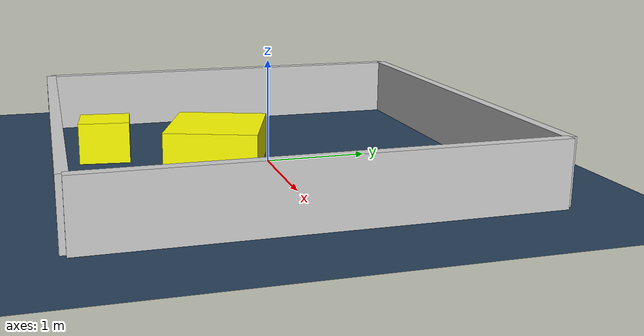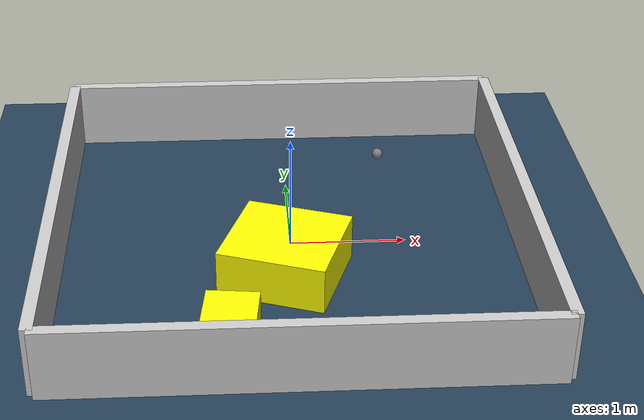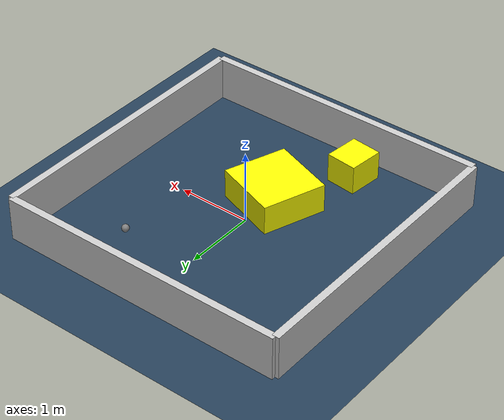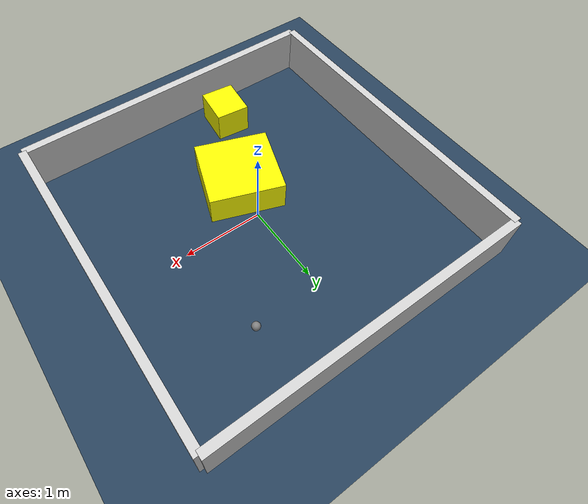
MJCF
<?xml version="1.0" ?>
<mujoco model="generated_environment">
  <option timestep="0.01" integrator="RK4" cone="elliptic"/>
  <default>
    <geom density="1"/>
  </default>
  <asset>
    <texture builtin="gradient" height="3072" rgb1="0.3 0.5 0.7" rgb2="0 0 0" type="skybox" width="512"/>
    <texture builtin="checker" height="300" mark="edge" markrgb="0.8 0.8 0.8" name="groundplane" rgb1="0.2 0.3 0.4" rgb2="0.1 0.2 0.3" type="2d" width="300"/>
    <material name="groundplane" reflectance="0.2" texrepeat="5 5" texture="groundplane" texuniform="true"/>
    <material name="robot" rgba="0.0 1.0 0.0 1"/>
  </asset>
  <worldbody>
    <light dir="0 0 -1" directional="true" pos="0 0 1.5"/>
    <geom condim="4" friction="1.0 0.005 0.001" material="groundplane" name="floor" size="0 0 0.05" type="plane"/>
    <body name="walls">
      <geom name="wall_1" condim="4" pos="-2.0 0.0 0.3" rgba="0.800000011920929 0.800000011920929 0.800000011920929 1.0" size="0.05 2.0 0.3" type="box"/>
      <geom name="wall_2" condim="4" pos="2.0 0.0 0.3" rgba="0.800000011920929 0.800000011920929 0.800000011920929 1.0" size="0.05 2.0 0.3" type="box"/>
      <geom name="wall_3" condim="4" pos="0.0 -2.0 0.3" rgba="0.800000011920929 0.800000011920929 0.800000011920929 1.0" size="2.0 0.05 0.3" type="box"/>
      <geom name="wall_4" condim="4" pos="0.0 2.0 0.3" rgba="0.800000011920929 0.800000011920929 0.800000011920929 1.0" size="2.0 0.05 0.3" type="box"/>
    </body>
    <body name="robot">
      <joint name="joint_x" type="slide" pos="0 0 0" axis="1 0 0"/>
      <joint name="joint_y" type="slide" pos="0 0 0" axis="0 1 0"/>
      <geom name="robot" type="sphere" pos="0.8841423590401969 1.224936549781836 0.2" size="0.05" mass="5." friction="1.0 0.005 0.0001" condim="4"/>
      <site name="sensor_ball"/>
    </body>
    <body name="obstacle_1_movable">
      <geom name="obstacle_1_movable" condim="4" pos="-0.0661221359154982 -0.49375905263754793 0.2" euler="0 0 70.51423675338862" friction="1.0 0.005 0.001" rgba="1 1 0 1" size="0.44177010736152655 0.45990849654650573 0.2" type="box" mass="0.1"/>
      <joint type="free"/>
    </body>
    <body name="obstacle_2_movable">
      <geom name="obstacle_2_movable" condim="4" pos="-0.534918185634478 -1.5285737883789032 0.2" euler="0 0 353.6846196812415" friction="1.0 0.005 0.001" rgba="1 1 0 1" size="0.2141609344987282 0.2431383743876673 0.2" type="box" mass="0.1"/>
      <joint type="free"/>
    </body>
  </worldbody>
  <actuator>
    <motor name="actuator_x" joint="joint_x" gear="1" ctrlrange="-1 1"/>
    <motor name="actuator_y" joint="joint_y" gear="1" ctrlrange="-1 1"/>
  </actuator>
</mujoco>
